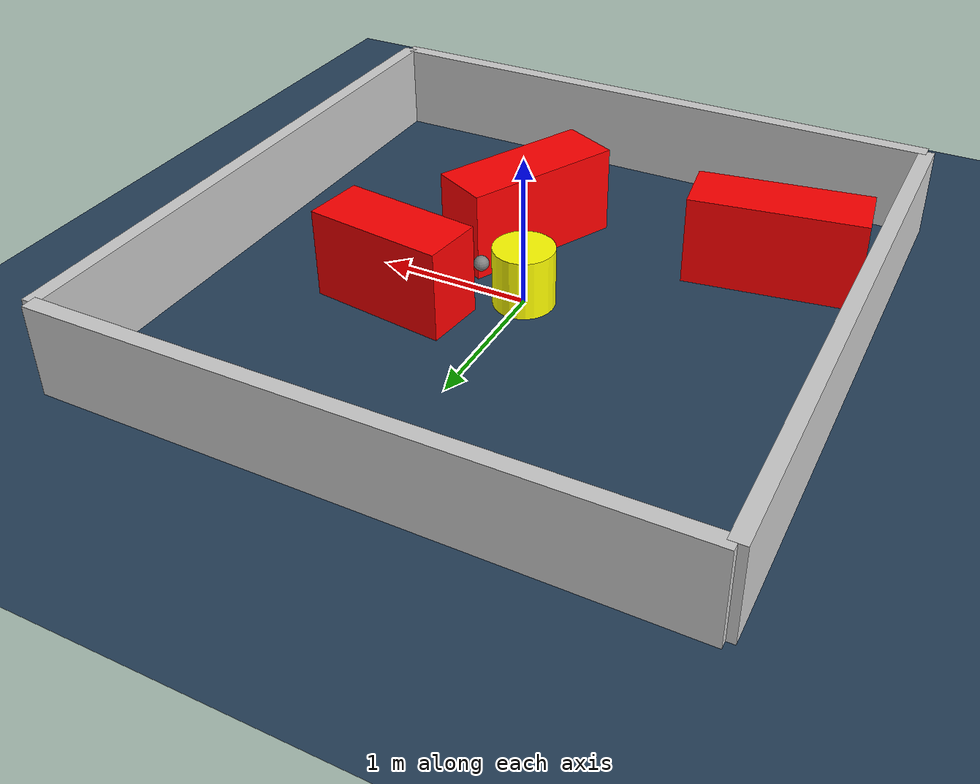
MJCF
<?xml version="1.0" ?>
<mujoco model="generated_environment">
  <option timestep="0.01" integrator="RK4" cone="elliptic"/>
  <default>
    <geom density="1"/>
  </default>
  <asset>
    <texture builtin="gradient" height="3072" rgb1="0.3 0.5 0.7" rgb2="0 0 0" type="skybox" width="512"/>
    <texture builtin="checker" height="300" mark="edge" markrgb="0.8 0.8 0.8" name="groundplane" rgb1="0.2 0.3 0.4" rgb2="0.1 0.2 0.3" type="2d" width="300"/>
    <material name="groundplane" reflectance="0.2" texrepeat="5 5" texture="groundplane" texuniform="true"/>
    <material name="robot" rgba="0.0 1.0 0.0 1"/>
  </asset>
  <worldbody>
    <light dir="0 0 -1" directional="true" pos="0 0 1.5"/>
    <geom condim="4" friction="1.0 0.005 0.001" material="groundplane" name="floor" size="0 0 0.05" type="plane"/>
    <body name="walls">
      <geom name="wall_1" condim="4" pos="-2.0 0.0 0.3" rgba="0.800000011920929 0.800000011920929 0.800000011920929 1.0" size="0.05 2.0 0.3" type="box"/>
      <geom name="wall_2" condim="4" pos="2.0 0.0 0.3" rgba="0.800000011920929 0.800000011920929 0.800000011920929 1.0" size="0.05 2.0 0.3" type="box"/>
      <geom name="wall_3" condim="4" pos="0.0 -2.0 0.3" rgba="0.800000011920929 0.800000011920929 0.800000011920929 1.0" size="2.0 0.05 0.3" type="box"/>
      <geom name="wall_4" condim="4" pos="0.0 2.0 0.3" rgba="0.800000011920929 0.800000011920929 0.800000011920929 1.0" size="2.0 0.05 0.3" type="box"/>
    </body>
    <body name="robot">
      <joint name="joint_x" type="slide" pos="0 0 0" axis="1 0 0"/>
      <joint name="joint_y" type="slide" pos="0 0 0" axis="0 1 0"/>
      <geom name="robot" type="sphere" pos="0.3 0.0 0.2" size="0.05" mass="5." friction="1.0 0.005 0.0001" condim="4" rgba="0.5 0.5 0.5 1.0"/>
      <site name="sensor_ball"/>
    </body>
    <body name="obstacle_movable_1">
      <geom name="obstacle_movable_1" condim="4" pos="0.0 0.0 0.2" euler="0 0 0.0" friction="1.0 0.005 0.001" rgba="1.0 1.0 0.0 1.0" size="0.2 0.2 0.0" type="cylinder" mass="0.1"/>
      <joint type="free"/>
    </body>
    <body name="obstacle_2_static">
      <geom name="obstacle_2_static" condim="4" pos="0.7171352515229903 0.3580174864641623 0.3" euler="0 0 172.8423037558826" friction="1.0 0.005 0.001" rgba="1 0 0 1" size="0.46442167208062607 0.2 0.3" type="box"/>
    </body>
    <body name="obstacle_3_static">
      <geom name="obstacle_3_static" condim="4" pos="0.31938423882487843 -0.6755130158675933 0.3" euler="0 0 63.758582430957006" friction="1.0 0.005 0.001" rgba="1 0 0 1" size="0.5430618407860945 0.2 0.3" type="box"/>
    </body>
    <body name="obstacle_4_static">
      <geom name="obstacle_4_static" condim="4" pos="-1.3180313770413294 -0.9473210949804259 0.3" euler="0 0 8.308936905081188" friction="1.0 0.005 0.001" rgba="1 0 0 1" size="0.5591207402546655 0.2 0.3" type="box"/>
    </body>
  </worldbody>
  <actuator>
    <motor name="actuator_x" joint="joint_x" gear="1" ctrlrange="-1 1"/>
    <motor name="actuator_y" joint="joint_y" gear="1" ctrlrange="-1 1"/>
  </actuator>
</mujoco>
